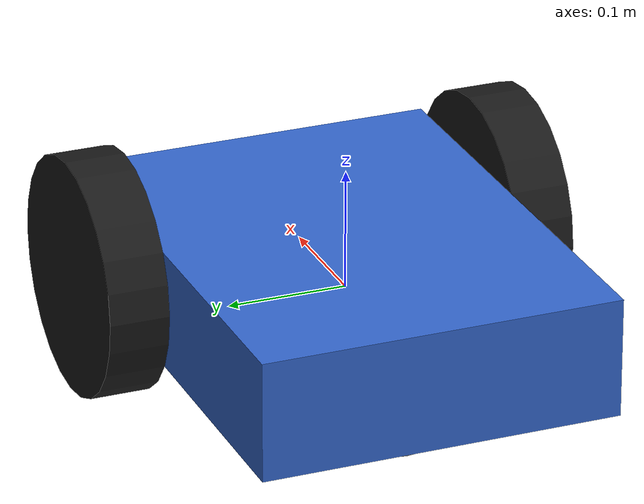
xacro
<!-- File: ~/your_ros2_workspace/src/mecabot_simulation/urdf/mecabot.urdf.xacro -->
<?xml version="1.0"?>
<robot xmlns:xacro="http://www.ros.org/wiki/xacro" name="mecabot">
    <!-- Part 1: Define the robot's links (physical parts) -->
    <link name="base_link">
        <visual>
            <geometry>
                <box size="0.4 0.3 0.1"/>
            </geometry>
            <material name="blue">
                <color rgba="0.2 0.4 0.8 1.0"/>
            </material>
        </visual>
        <collision>
            <geometry>
                <box size="0.4 0.3 0.1"/>
            </geometry>
        </collision>
        <inertial>
            <mass value="5.0"/>
            <inertia ixx="0.04" ixy="0.0" ixz="0.0" iyy="0.07" iyz="0.0" izz="0.1"/>
        </inertial>
    </link>
    <link name="caster_wheel">
         <visual>
            <geometry>
                <sphere radius="0.05"/>
            </geometry>
            <material name="grey">
                <color rgba="0.5 0.5 0.5 1.0"/>
            </material>
        </visual>
        <collision>
            <geometry>
                <sphere radius="0.05"/>
            </geometry>
        </collision>
        <inertial>
            <mass value="0.5"/>
            <inertia ixx="0.001" ixy="0.0" ixz="0.0" iyy="0.001" iyz="0.0" izz="0.001"/>
        </inertial>
    </link>
    <!-- Use a macro to create the two main wheels -->
    <xacro:macro name="wheel" params="prefix">
        <link name="${prefix}_wheel">
            <visual>
                <origin rpy="1.5707 0 0"/>
                <geometry>
                    <cylinder radius="0.1" length="0.05"/>
                </geometry>
                <material name="black">
                    <color rgba="0.1 0.1 0.1 1.0"/>
                </material>
            </visual>
            <collision>
                <origin rpy="1.5707 0 0"/>
                <geometry>
                    <cylinder radius="0.1" length="0.05"/>
                </geometry>
            </collision>
            <inertial>
                <mass value="1.0"/>
                <inertia ixx="0.005" ixy="0.0" ixz="0.0" iyy="0.005" iyz="0.0" izz="0.01"/>
            </inertial>
        </link>
    </xacro:macro>
    <xacro:wheel prefix="left"/>
    <xacro:wheel prefix="right"/>
    <!-- Part 2: Define the joints connecting the links -->
    <joint name="left_wheel_joint" type="continuous">
        <parent link="base_link"/>
        <child link="left_wheel"/>
        <origin xyz="0.1 0.175 0" rpy="0 0 0"/>
        <axis xyz="0 1 0"/>
    </joint>
    <joint name="right_wheel_joint" type="continuous">
        <parent link="base_link"/>
        <child link="right_wheel"/>
        <origin xyz="0.1 -0.175 0" rpy="0 0 0"/>
        <axis xyz="0 1 0"/>
    </joint>
    <joint name="caster_wheel_joint" type="fixed">
        <parent link="base_link"/>
        <child link="caster_wheel"/>
        <origin xyz="-0.1 0 -0.05" rpy="0 0 0"/>
    </joint>
    <!-- Part 3: Add the Gazebo plugin for movement -->
    <gazebo>
        <plugin name="differential_drive_controller" filename="libgazebo_ros_diff_drive.so">
            <!-- Update rate in Hz -->
            <update_rate>30</update_rate>
            <!-- Wheel joint names -->
            <left_joint>left_wheel_joint</left_joint>
            <right_joint>right_wheel_joint</right_joint>
            <!-- Kinematic properties -->
            <wheel_separation>0.35</wheel_separation>
            <wheel_diameter>0.2</wheel_diameter>
            <!-- Output topics -->
            <command_topic>cmd_vel</command_topic>
            <odometry_topic>odom</odometry_topic>
            <odometry_frame>odom</odometry_frame>
            <robot_base_frame>base_link</robot_base_frame>
            <publish_wheel_tf>true</publish_wheel_tf>
            <publish_odom>true</publish_odom>
            <publish_wheel_joint_state>true</publish_wheel_joint_state>
        </plugin>
    </gazebo>
</robot>
